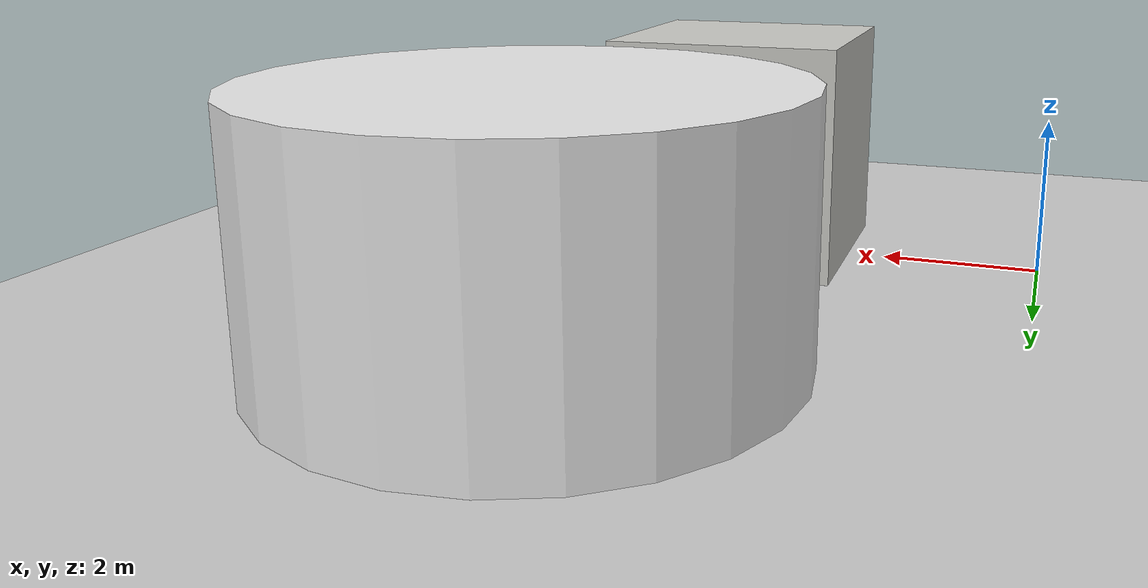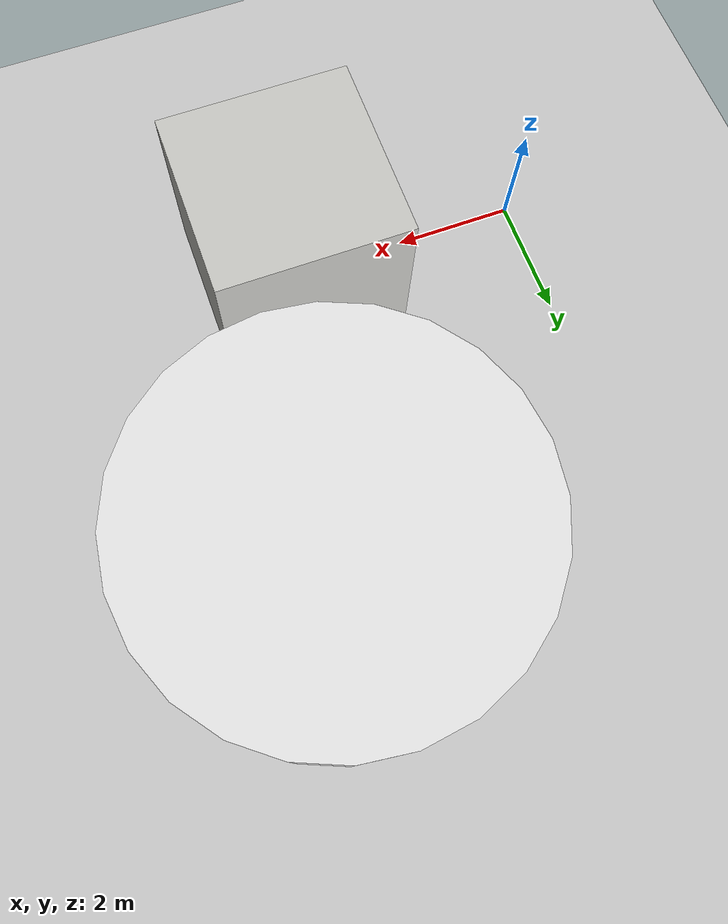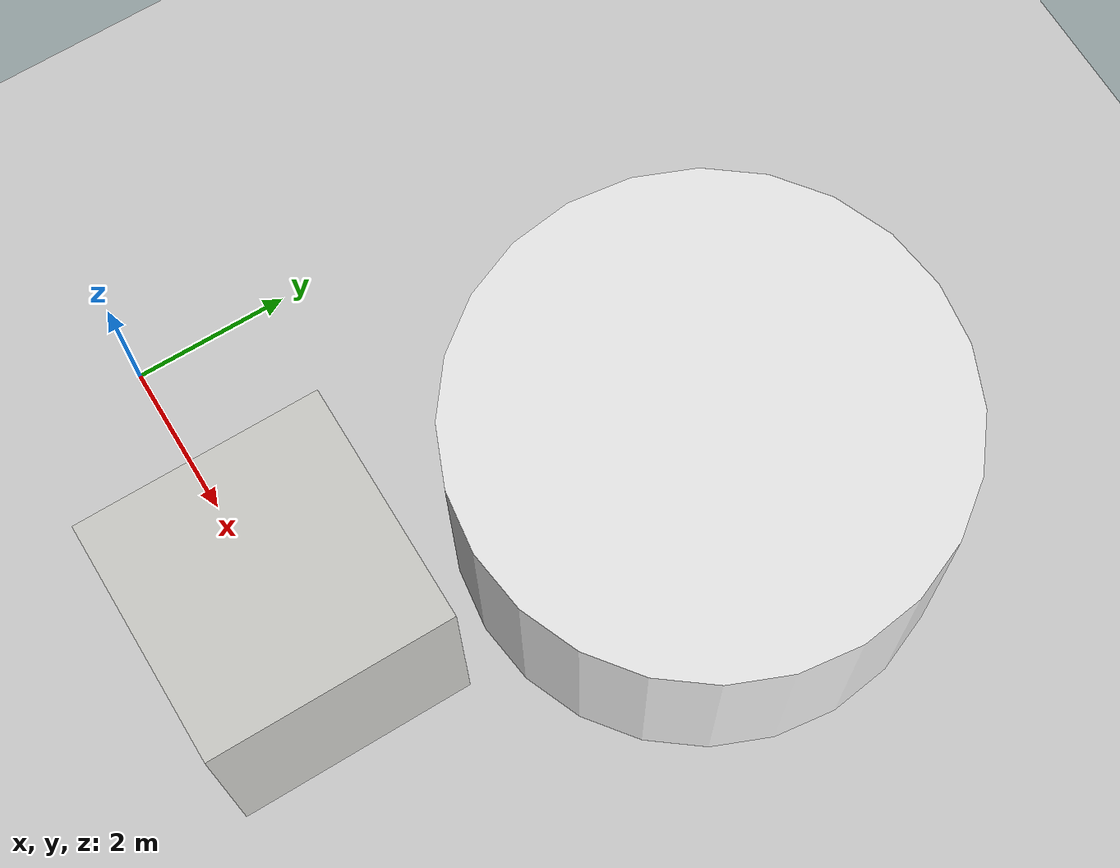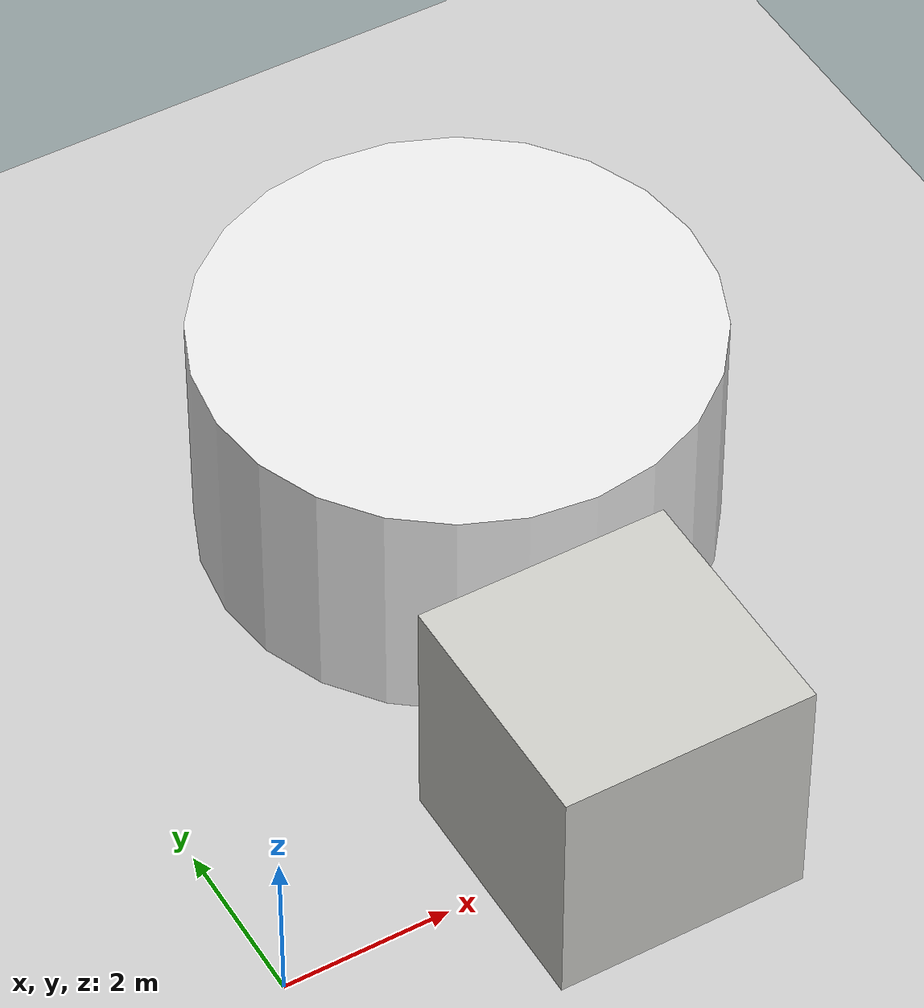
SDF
<?xml version="1.0" ?>
<sdf version="1.4">
  <world name="default">

    <plugin name="gazebo_ros_state" filename="libgazebo_ros_state.so">
      <ros>
        <namespace>/gazebo</namespace>
      </ros>

      <update_rate>1.0</update_rate>
    </plugin>

    <gui>
      <camera name='user_camera'>
        <pose frame=''>0.3 -8.0 2.3 0 0.25 2.6</pose>
        <projection_type>perspective</projection_type>
        <track_visual>
          <min_dist>-10.0</min_dist>
          <max_dist>10.0</max_dist>
        </track_visual>
      </camera>
    </gui>

    <scene>
      <ambient>0.9 0.9 0.9 1</ambient>
      <background>0.3 0.3 0.3 1</background>
      <shadows>true</shadows>
    </scene>

    <physics name='default_physics' default='0' type='ode'>
      <gravity>0 0 -9.8066</gravity>
      <ode>
        <solver>
          <type>quick</type>
          <iters>50</iters>
          <sor>1.3</sor>
          <use_dynamic_moi_rescaling>0</use_dynamic_moi_rescaling>
        </solver>
        <constraints>
          <cfm>0</cfm>
          <erp>0.2</erp>
          <contact_max_correcting_vel>100</contact_max_correcting_vel>
          <contact_surface_layer>0.001</contact_surface_layer>
        </constraints>
      </ode>
      <max_step_size>0.004</max_step_size>
      <real_time_factor>1</real_time_factor>
      <real_time_update_rate>250</real_time_update_rate>
      <magnetic_field>6.0e-6 2.3e-5 -4.2e-5</magnetic_field>
    </physics>

    <!-- A global light source -->
    <include>
      <uri>model://sun</uri>
    </include>
    <!-- A ground plane -->
    <include>
      <uri>model://ground_plane</uri>
    </include>

    <model name='cylinder'>
      <pose>5.0 5.0 1.5 0.0 0 0</pose>
      <link name='link'>
        <inertial>
          <mass>150</mass>
          <inertia>
            <ixx>100</ixx>
            <ixy>0</ixy>
            <ixz>0</ixz>
            <iyy>100</iyy>
            <iyz>0</iyz>
            <izz>100</izz>
          </inertia>
          <pose>0 0 0 0 -0 0</pose>
        </inertial>
        <collision name='collision'>
          <geometry>
            <cylinder>
              <radius>3.0</radius>
              <length>3.0</length>
            </cylinder>
          </geometry>
          <max_contacts>50</max_contacts>
          <surface>
            <contact>
              <ode>
                <kp>1e10</kp>
                <kd>0.1</kd>
                <max_vel>0</max_vel>
                <min_depth>0.003</min_depth>
              </ode>
            </contact>
            <bounce/>
            <friction>
              <torsional>
                <ode/>
              </torsional>
              <ode>
              </ode>
            </friction>
          </surface>
        </collision>
        <visual name='visual'>
          <geometry>
            <cylinder>
              <radius>3.0</radius>
              <length>3.0</length>
            </cylinder>
          </geometry>
          <material>
            <script>
              <name>Gazebo/White</name>
              <uri>file://media/materials/scripts/gazebo.material</uri>
            </script>
          </material>
        </visual>
        <self_collide>0</self_collide>
        <enable_wind>0</enable_wind>
        <kinematic>0</kinematic>
        <gravity>1</gravity>
      </link>
    <static>1</static>
    </model>

    <model name='wall'>
      <pose>4.0 0.0 1.5 0 0 0</pose>
      <link name='link'>
        <inertial>
          <mass>300</mass>
          <inertia>
            <ixx>100</ixx>
            <ixy>0</ixy>
            <ixz>0</ixz>
            <iyy>100</iyy>
            <iyz>0</iyz>
            <izz>100</izz>
          </inertia>
          <pose>0 0 0 0 -0 0</pose>
        </inertial>
        <collision name='collision'>
          <geometry>
            <box>
              <size>3 3 3.0</size>
            </box>
          </geometry>
          <max_contacts>50</max_contacts>
          <surface>
            <contact>
              <ode>
                <kp>1e10</kp>
                <kd>0.1</kd>
                <max_vel>0</max_vel>
                <min_depth>0.003</min_depth>
              </ode>
            </contact>
            <bounce/>
            <friction>
              <torsional>
                <ode/>
              </torsional>
              <ode>
              </ode>
            </friction>
          </surface>
        </collision>
        <visual name='visual'>
          <geometry>
            <box>
              <size>3 3 3.0</size>
            </box>
          </geometry>
          <material>
            <script>
              <name>Gazebo/CeilingTiled</name>
              <uri>file://media/materials/scripts/gazebo.material</uri>
            </script>
            <ambient>0.760784 0.662745 0.627451 1</ambient>
          </material>
        </visual>
        <self_collide>0</self_collide>
        <enable_wind>0</enable_wind>
        <gravity>1</gravity>
        <kinematic>0</kinematic>
      </link>
    <static>1</static>

    </model>
  </world>
</sdf>
